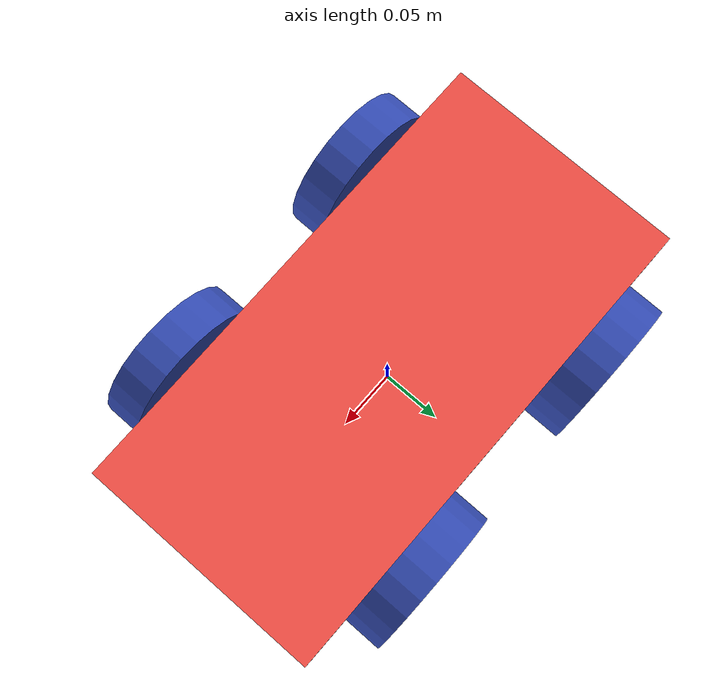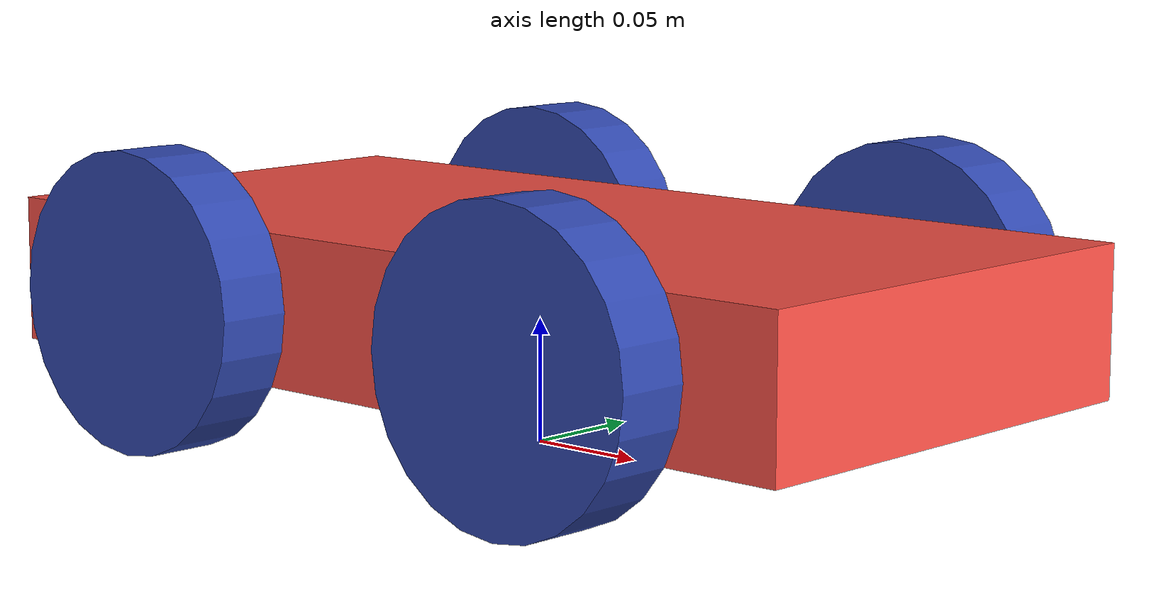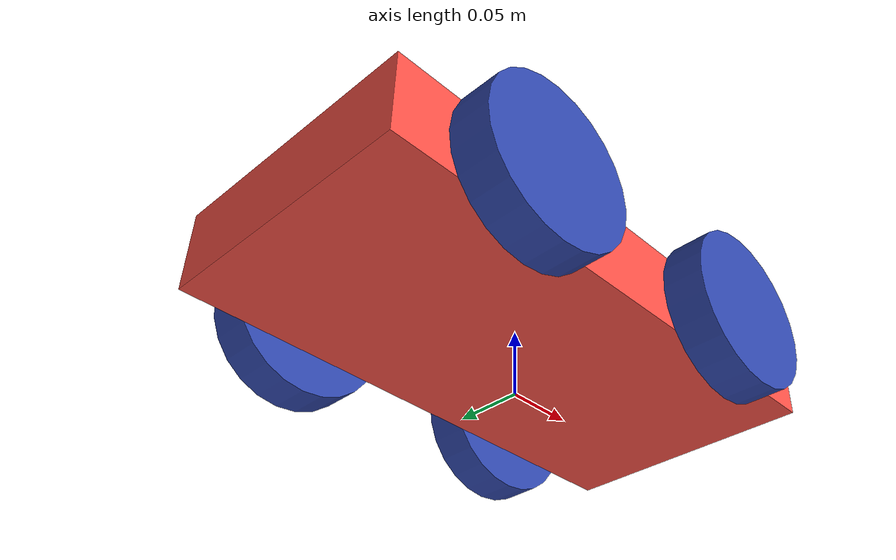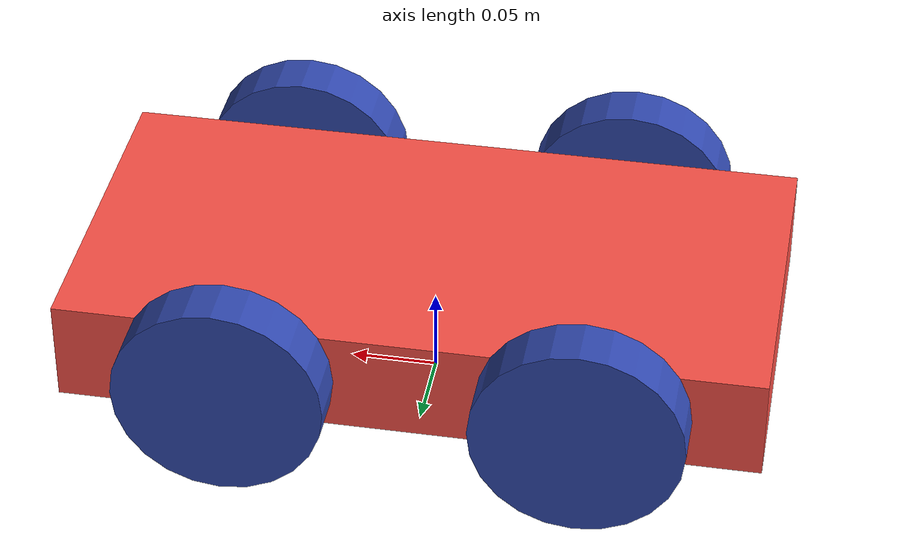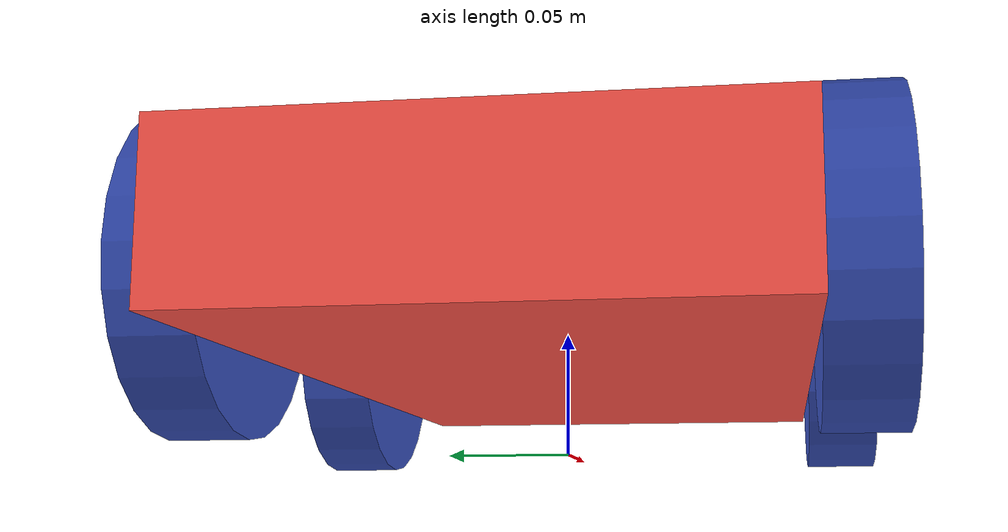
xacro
<?xml version="1.0"?>
<robot name="robot_urdf" xmlns:xacro="http://www.ros.org/wiki/xacro">

    <xacro:include filename="dimensional_properties.xacro" />

    <link name="base_link">
        <visual>
            <geometry>
                <box size="${base_length} ${base_width} ${wheel_radius}" />
            </geometry>
            <origin xyz="0 0 ${wheel_radius}" rpy="0 0 0" />
            <material name="Orange_Red">
                <color rgba="1 0.325 0.286 1" />
            </material>
        </visual>
    </link>

    <xacro:macro name="wheel" params="location">
        <link name="${location}_wheel">
            <visual>
                <geometry>
                    <cylinder radius="${(wheel_radius)}" length="${wheel_width}" />
                </geometry>
                <origin xyz="0 ${wheel_width} 0" rpy="${pi / 2.0} 0 0" />
                <material name="Violet_Blue">
                    <color rgba="0.196 0.2902 0.698 1">
                    </color>
                </material>
            </visual>
        </link>
    </xacro:macro>

    <xacro:wheel location="front_left" />
    <xacro:wheel location="back_left" />
    <xacro:wheel location="front_right" />
    <xacro:wheel location="back_right" />

    <joint name="front_left_wheel_joint" type="continuous">
        <parent link="base_link" />
        <child link="front_left_wheel" />
        <origin xyz="${(base_length)*0.25} ${(base_width/2.0)-0.015} ${wheel_radius}" rpy="0 0 0" />
        <axis xyz="0 1 0" />
    </joint>

    <joint name="back_left_wheel_joint" type="continuous">
        <parent link="base_link" />
        <child link="back_left_wheel" />
        <origin xyz="${(-base_length)*0.25} ${((base_width/2.0)-0.015)} ${wheel_radius}" rpy="0 0 0" />
        <axis xyz="0 1 0" />
    </joint>

     <joint name="front_right_wheel_joint" type="continuous">
        <parent link="base_link" />
        <child link="front_right_wheel" />
        <origin xyz="${(base_length)*0.25} ${(-base_width/2.0)-0.045} ${wheel_radius}" rpy="0 0 0" />
        <axis xyz="0 1 0" />
    </joint>

    <joint name="back_right_wheel_joint" type="continuous">
        <parent link="base_link" />
        <child link="back_right_wheel" />
        <origin xyz="${-(base_length)*0.25} ${(-base_width/2.0)-0.045} ${wheel_radius}" rpy="0 0 0" />
        <axis xyz="0 1 0" />
    </joint>

</robot>

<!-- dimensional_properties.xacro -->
<robot xmlns:xacro="http://www.ros.org/wiki/xacro">

    <xacro:property name="base_length" value="0.4 "/>
    <xacro:property name="base_width" value="0.2 "/>
    <xacro:property name="base_height" value="0.05 "/>
    <xacro:property name="wheel_radius" value="0.06"/>
    <xacro:property name="wheel_width" value="0.03"/>

</robot>
